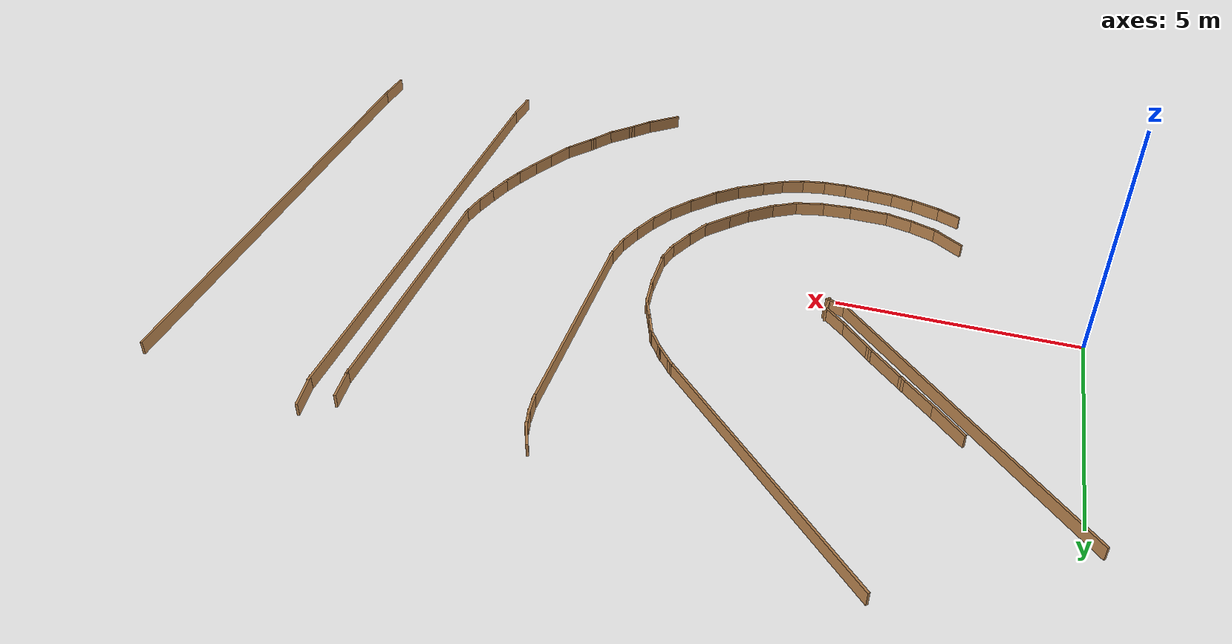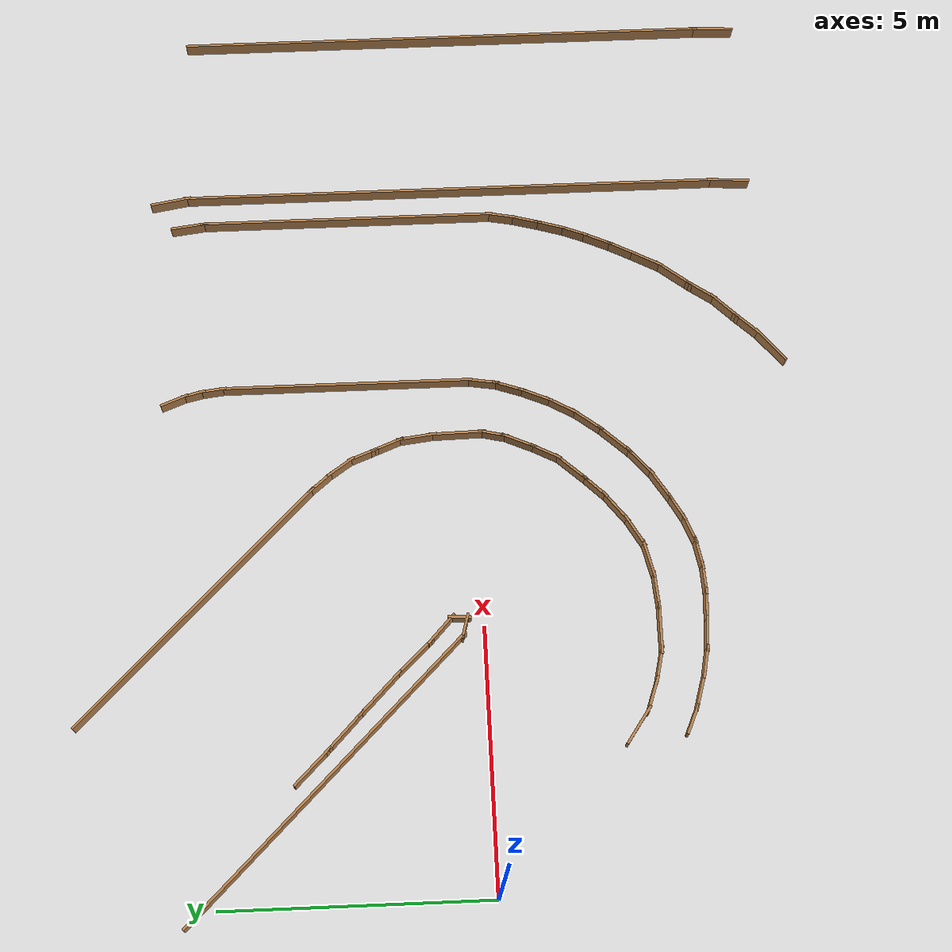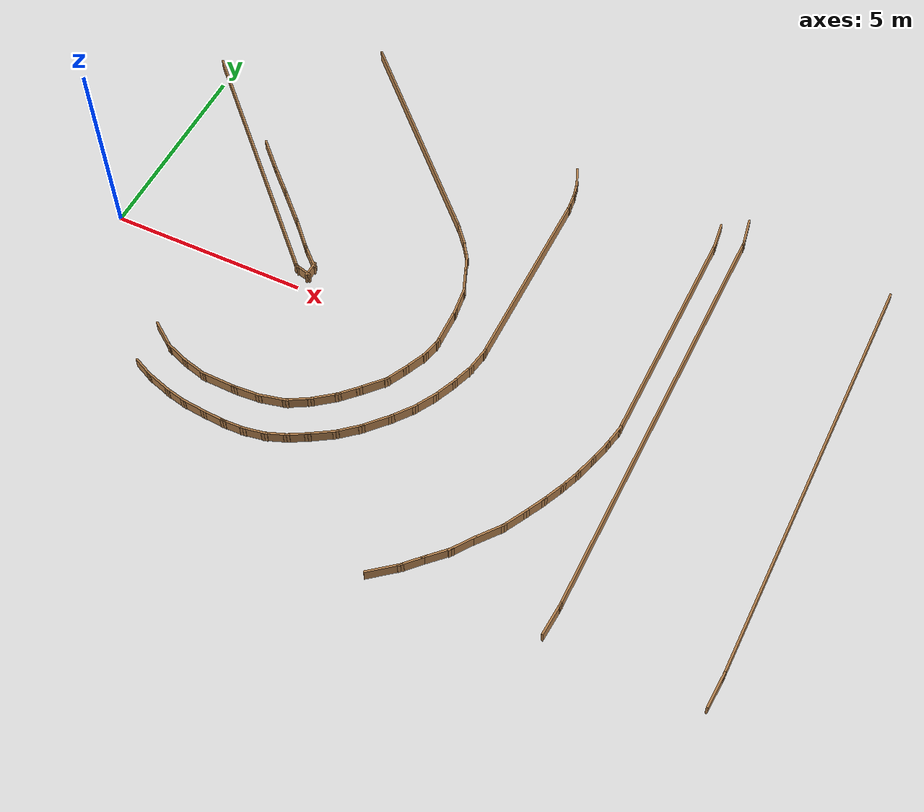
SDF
<sdf version="1.6">
 <model name="rover_racetrack">
  <pose>3.369 -0.8264 0 0 -0 0</pose>
  <link name="Wall_184">
   <collision name="Wall_184_Collision">
    <geometry><box><size>0.605225 0.05 0.3</size></box></geometry>
    <pose>0 0 0.15 0 -0 0</pose>
   </collision>
   <visual name="Wall_184_Visual">
    <pose>0 0 0.15 0 -0 0</pose>
    <geometry><box><size>0.605225 0.05 0.3</size></box></geometry>
    <material>
     <script><uri>file://media/materials/scripts/gazebo.material</uri><name>Gazebo/Wood</name></script>
     <ambient>0.435294 0.796078 0.67451 1</ambient>
    </material>
   </visual>
   <pose>-0.33455 -2.89739 0 0 0 -0.428151</pose>
  </link>
  <link name="Wall_185">
   <collision name="Wall_185_Collision">
    <geometry><box><size>0.789644 0.05 0.3</size></box></geometry>
    <pose>0 0 0.15 0 -0 0</pose>
   </collision>
   <visual name="Wall_185_Visual">
    <pose>0 0 0.15 0 -0 0</pose>
    <geometry><box><size>0.789644 0.05 0.3</size></box></geometry>
    <material>
     <script><uri>file://media/materials/scripts/gazebo.material</uri><name>Gazebo/Wood</name></script>
     <ambient>0.435294 0.796078 0.67451 1</ambient>
    </material>
   </visual>
   <pose>0.177626 -3.08778 0 0 0 -0.304511</pose>
  </link>
  <link name="Wall_186">
   <collision name="Wall_186_Collision">
    <geometry><box><size>0.649256 0.05 0.3</size></box></geometry>
    <pose>0 0 0.15 0 -0 0</pose>
   </collision>
   <visual name="Wall_186_Visual">
    <pose>0 0 0.15 0 -0 0</pose>
    <geometry><box><size>0.649256 0.05 0.3</size></box></geometry>
    <material>
     <script><uri>file://media/materials/scripts/gazebo.material</uri><name>Gazebo/Wood</name></script>
     <ambient>0.435294 0.796078 0.67451 1</ambient>
    </material>
   </visual>
   <pose>0.726821 -3.23597 0 0 0 -0.211093</pose>
  </link>
  <link name="Wall_187">
   <collision name="Wall_187_Collision">
    <geometry><box><size>0.710359 0.05 0.3</size></box></geometry>
    <pose>0 0 0.15 0 -0 0</pose>
   </collision>
   <visual name="Wall_187_Visual">
    <pose>0 0 0.15 0 -0 0</pose>
    <geometry><box><size>0.710359 0.05 0.3</size></box></geometry>
    <material>
     <script><uri>file://media/materials/scripts/gazebo.material</uri><name>Gazebo/Wood</name></script>
     <ambient>0.435294 0.796078 0.67451 1</ambient>
    </material>
   </visual>
   <pose>1.24986 -3.31443 0 0 0 -0.093477</pose>
  </link>
  <link name="Wall_188">
   <collision name="Wall_188_Collision">
    <geometry><box><size>0.691601 0.05 0.3</size></box></geometry>
    <pose>0 0 0.15 0 -0 0</pose>
   </collision>
   <visual name="Wall_188_Visual">
    <pose>0 0 0.15 0 -0 0</pose>
    <geometry><box><size>0.691601 0.05 0.3</size></box></geometry>
    <material>
     <script><uri>file://media/materials/scripts/gazebo.material</uri><name>Gazebo/Wood</name></script>
     <ambient>0.435294 0.796078 0.67451 1</ambient>
    </material>
   </visual>
   <pose>1.79906 -3.35802 0 0 0 -0.064427</pose>
  </link>
  <link name="Wall_189">
   <collision name="Wall_189_Collision">
    <geometry><box><size>0.655909 0.05 0.3</size></box></geometry>
    <pose>0 0 0.15 0 -0 0</pose>
   </collision>
   <visual name="Wall_189_Visual">
    <pose>0 0 0.15 0 -0 0</pose>
    <geometry><box><size>0.655909 0.05 0.3</size></box></geometry>
    <material>
     <script><uri>file://media/materials/scripts/gazebo.material</uri><name>Gazebo/Wood</name></script>
     <ambient>0.435294 0.796078 0.67451 1</ambient>
    </material>
   </visual>
   <pose>2.3221 -3.36674 0 0 -0 0.034469</pose>
  </link>
  <link name="Wall_190">
   <collision name="Wall_190_Collision">
    <geometry><box><size>0.663068 0.05 0.3</size></box></geometry>
    <pose>0 0 0.15 0 -0 0</pose>
   </collision>
   <visual name="Wall_190_Visual">
    <pose>0 0 0.15 0 -0 0</pose>
    <geometry><box><size>0.663068 0.05 0.3</size></box></geometry>
    <material>
     <script><uri>file://media/materials/scripts/gazebo.material</uri><name>Gazebo/Wood</name></script>
     <ambient>0.435294 0.796078 0.67451 1</ambient>
    </material>
   </visual>
   <pose>2.82771 -3.31443 0 0 -0 0.170735</pose>
  </link>
  <link name="Wall_191">
   <collision name="Wall_191_Collision">
    <geometry><box><size>0.651988 0.05 0.3</size></box></geometry>
    <pose>0 0 0.15 0 -0 0</pose>
   </collision>
   <visual name="Wall_191_Visual">
    <pose>0 0 0.15 0 -0 0</pose>
    <geometry><box><size>0.651988 0.05 0.3</size></box></geometry>
    <material>
     <script><uri>file://media/materials/scripts/gazebo.material</uri><name>Gazebo/Wood</name></script>
     <ambient>0.435294 0.796078 0.67451 1</ambient>
    </material>
   </visual>
   <pose>3.31588 -3.18367 0 0 -0 0.354706</pose>
  </link>
  <link name="Wall_192">
   <collision name="Wall_192_Collision">
    <geometry><box><size>0.625876 0.05 0.3</size></box></geometry>
    <pose>0 0 0.15 0 -0 0</pose>
   </collision>
   <visual name="Wall_192_Visual">
    <pose>0 0 0.15 0 -0 0</pose>
    <geometry><box><size>0.625876 0.05 0.3</size></box></geometry>
    <material>
     <script><uri>file://media/materials/scripts/gazebo.material</uri><name>Gazebo/Wood</name></script>
     <ambient>0.435294 0.796078 0.67451 1</ambient>
    </material>
   </visual>
   <pose>3.76047 -2.98317 0 0 -0 0.496423</pose>
  </link>
  <link name="Wall_193">
   <collision name="Wall_193_Collision">
    <geometry><box><size>0.783916 0.05 0.3</size></box></geometry>
    <pose>0 0 0.15 0 -0 0</pose>
   </collision>
   <visual name="Wall_193_Visual">
    <pose>0 0 0.15 0 -0 0</pose>
    <geometry><box><size>0.783916 0.05 0.3</size></box></geometry>
    <material>
     <script><uri>file://media/materials/scripts/gazebo.material</uri><name>Gazebo/Wood</name></script>
     <ambient>0.435294 0.796078 0.67451 1</ambient>
    </material>
   </visual>
   <pose>4.23993 -2.70422 0 0 -0 0.549853</pose>
  </link>
  <link name="Wall_194">
   <collision name="Wall_194_Collision">
    <geometry><box><size>0.743807 0.05 0.3</size></box></geometry>
    <pose>0 0 0.15 0 -0 0</pose>
   </collision>
   <visual name="Wall_194_Visual">
    <pose>0 0 0.15 0 -0 0</pose>
    <geometry><box><size>0.743807 0.05 0.3</size></box></geometry>
    <material>
     <script><uri>file://media/materials/scripts/gazebo.material</uri><name>Gazebo/Wood</name></script>
     <ambient>0.435294 0.796078 0.67451 1</ambient>
    </material>
   </visual>
   <pose>4.73681 -2.3468 0 0 -0 0.702257</pose>
  </link>
  <link name="Wall_195">
   <collision name="Wall_195_Collision">
    <geometry><box><size>0.865463 0.05 0.3</size></box></geometry>
    <pose>0 0 0.15 0 -0 0</pose>
   </collision>
   <visual name="Wall_195_Visual">
    <pose>0 0 0.15 0 -0 0</pose>
    <geometry><box><size>0.865463 0.05 0.3</size></box></geometry>
    <material>
     <script><uri>file://media/materials/scripts/gazebo.material</uri><name>Gazebo/Wood</name></script>
     <ambient>0.435294 0.796078 0.67451 1</ambient>
    </material>
   </visual>
   <pose>5.20756 -1.8935 0 0 -0 0.819867</pose>
  </link>
  <link name="Wall_196">
   <collision name="Wall_196_Collision">
    <geometry><box><size>0.746361 0.05 0.3</size></box></geometry>
    <pose>0 0 0.15 0 -0 0</pose>
   </collision>
   <visual name="Wall_196_Visual">
    <pose>0 0 0.15 0 -0 0</pose>
    <geometry><box><size>0.746361 0.05 0.3</size></box></geometry>
    <material>
     <script><uri>file://media/materials/scripts/gazebo.material</uri><name>Gazebo/Wood</name></script>
     <ambient>0.435294 0.796078 0.67451 1</ambient>
    </material>
   </visual>
   <pose>5.63471 -1.39661 0 0 -0 0.909753</pose>
  </link>
  <link name="Wall_197">
   <collision name="Wall_197_Collision">
    <geometry><box><size>0.712254 0.05 0.3</size></box></geometry>
    <pose>0 0 0.15 0 -0 0</pose>
   </collision>
   <visual name="Wall_197_Visual">
    <pose>0 0 0.15 0 -0 0</pose>
    <geometry><box><size>0.712254 0.05 0.3</size></box></geometry>
    <material>
     <script><uri>file://media/materials/scripts/gazebo.material</uri><name>Gazebo/Wood</name></script>
     <ambient>0.435294 0.796078 0.67451 1</ambient>
    </material>
   </visual>
   <pose>5.95725 -0.917152 0 0 -0 1.05165</pose>
  </link>
  <link name="Wall_198">
   <collision name="Wall_198_Collision">
    <geometry><box><size>0.720039 0.05 0.3</size></box></geometry>
    <pose>0 0 0.15 0 -0 0</pose>
   </collision>
   <visual name="Wall_198_Visual">
    <pose>0 0 0.15 0 -0 0</pose>
    <geometry><box><size>0.720039 0.05 0.3</size></box></geometry>
    <material>
     <script><uri>file://media/materials/scripts/gazebo.material</uri><name>Gazebo/Wood</name></script>
     <ambient>0.435294 0.796078 0.67451 1</ambient>
    </material>
   </visual>
   <pose>6.21005 -0.411544 0 0 -0 1.16189</pose>
  </link>
  <link name="Wall_199">
   <collision name="Wall_199_Collision">
    <geometry><box><size>0.684824 0.05 0.3</size></box></geometry>
    <pose>0 0 0.15 0 -0 0</pose>
   </collision>
   <visual name="Wall_199_Visual">
    <pose>0 0 0.15 0 -0 0</pose>
    <geometry><box><size>0.684824 0.05 0.3</size></box></geometry>
    <material>
     <script><uri>file://media/materials/scripts/gazebo.material</uri><name>Gazebo/Wood</name></script>
     <ambient>0.435294 0.796078 0.67451 1</ambient>
    </material>
   </visual>
   <pose>6.41055 0.102782 0 0 -0 1.23874</pose>
  </link>
  <link name="Wall_200">
   <collision name="Wall_200_Collision">
    <geometry><box><size>0.697463 0.05 0.3</size></box></geometry>
    <pose>0 0 0.15 0 -0 0</pose>
   </collision>
   <visual name="Wall_200_Visual">
    <pose>0 0 0.15 0 -0 0</pose>
    <geometry><box><size>0.697463 0.05 0.3</size></box></geometry>
    <material>
     <script><uri>file://media/materials/scripts/gazebo.material</uri><name>Gazebo/Wood</name></script>
     <ambient>0.435294 0.796078 0.67451 1</ambient>
    </material>
   </visual>
   <pose>6.54131 0.625825 0 0 -0 1.41088</pose>
  </link>
  <link name="Wall_202">
   <collision name="Wall_202_Collision">
    <geometry><box><size>5 0.05 0.3</size></box></geometry>
    <pose>0 0 0.15 0 -0 0</pose>
   </collision>
   <visual name="Wall_202_Visual">
    <pose>0 0 0.15 0 -0 0</pose>
    <geometry><box><size>5 0.05 0.3</size></box></geometry>
    <material>
     <script><uri>file://media/materials/scripts/gazebo.material</uri><name>Gazebo/Wood</name></script>
     <ambient>0.435294 0.796078 0.67451 1</ambient>
    </material>
   </visual>
   <pose>6.5849 3.32106 0 0 -0 1.5708</pose>
  </link>
  <link name="Wall_203">
   <collision name="Wall_203_Collision">
    <geometry><box><size>0.565031 0.05 0.3</size></box></geometry>
    <pose>0 0 0.15 0 -0 0</pose>
   </collision>
   <visual name="Wall_203_Visual">
    <pose>0 0 0.15 0 -0 0</pose>
    <geometry><box><size>0.565031 0.05 0.3</size></box></geometry>
    <material>
     <script><uri>file://media/materials/scripts/gazebo.material</uri><name>Gazebo/Wood</name></script>
     <ambient>0.435294 0.796078 0.67451 1</ambient>
    </material>
   </visual>
   <pose>6.56018 5.9521 0 0 -0 1.69023</pose>
  </link>
  <link name="Wall_204">
   <collision name="Wall_204_Collision">
    <geometry><box><size>0.500158 0.05 0.3</size></box></geometry>
    <pose>0 0 0.15 0 -0 0</pose>
   </collision>
   <visual name="Wall_204_Visual">
    <pose>0 0 0.15 0 -0 0</pose>
    <geometry><box><size>0.500158 0.05 0.3</size></box></geometry>
    <material>
     <script><uri>file://media/materials/scripts/gazebo.material</uri><name>Gazebo/Wood</name></script>
     <ambient>0.435294 0.796078 0.67451 1</ambient>
    </material>
   </visual>
   <pose>6.49535 6.32856 0 0 -0 1.80189</pose>
  </link>
  <link name="Wall_205">
   <collision name="Wall_205_Collision">
    <geometry><box><size>0.58189 0.05 0.3</size></box></geometry>
    <pose>0 0 0.15 0 -0 0</pose>
   </collision>
   <visual name="Wall_205_Visual">
    <pose>0 0 0.15 0 -0 0</pose>
    <geometry><box><size>0.58189 0.05 0.3</size></box></geometry>
    <material>
     <script><uri>file://media/materials/scripts/gazebo.material</uri><name>Gazebo/Wood</name></script>
     <ambient>0.435294 0.796078 0.67451 1</ambient>
    </material>
   </visual>
   <pose>6.37505 6.69949 0 0 -0 1.9513</pose>
  </link>
  <link name="Wall_219">
   <collision name="Wall_219_Collision">
    <geometry><box><size>6.34557 0.05 0.3</size></box></geometry>
    <pose>0 0 0.15 0 -0 0</pose>
   </collision>
   <visual name="Wall_219_Visual">
    <pose>0 0 0.15 0 -0 0</pose>
    <geometry><box><size>6.34557 0.05 0.3</size></box></geometry>
    <material>
     <script><uri>file://media/materials/scripts/gazebo.material</uri><name>Gazebo/Wood</name></script>
     <ambient>0.435294 0.796078 0.67451 1</ambient>
    </material>
   </visual>
   <pose>2.19463 6.21829 0 0 0 -0.78311</pose>
  </link>
  <link name="Wall_220">
   <collision name="Wall_220_Collision">
    <geometry><box><size>0.648031 0.05 0.3</size></box></geometry>
    <pose>0 0 0.15 0 -0 0</pose>
   </collision>
   <visual name="Wall_220_Visual">
    <pose>0 0 0.15 0 -0 0</pose>
    <geometry><box><size>0.648031 0.05 0.3</size></box></geometry>
    <material>
     <script><uri>file://media/materials/scripts/gazebo.material</uri><name>Gazebo/Wood</name></script>
     <ambient>0.435294 0.796078 0.67451 1</ambient>
    </material>
   </visual>
   <pose>4.5505 3.84237 0 0 0 -0.870903</pose>
  </link>
  <link name="Wall_221">
   <collision name="Wall_221_Collision">
    <geometry><box><size>0.639482 0.05 0.3</size></box></geometry>
    <pose>0 0 0.15 0 -0 0</pose>
   </collision>
   <visual name="Wall_221_Visual">
    <pose>0 0 0.15 0 -0 0</pose>
    <geometry><box><size>0.639482 0.05 0.3</size></box></geometry>
    <material>
     <script><uri>file://media/materials/scripts/gazebo.material</uri><name>Gazebo/Wood</name></script>
     <ambient>0.435294 0.796078 0.67451 1</ambient>
    </material>
   </visual>
   <pose>4.85125 3.45139 0 0 0 -0.96007</pose>
  </link>
  <link name="Wall_222">
   <collision name="Wall_222_Collision">
    <geometry><box><size>0.645198 0.05 0.3</size></box></geometry>
    <pose>0 0 0.15 0 -0 0</pose>
   </collision>
   <visual name="Wall_222_Visual">
    <pose>0 0 0.15 0 -0 0</pose>
    <geometry><box><size>0.645198 0.05 0.3</size></box></geometry>
    <material>
     <script><uri>file://media/materials/scripts/gazebo.material</uri><name>Gazebo/Wood</name></script>
     <ambient>0.435294 0.796078 0.67451 1</ambient>
    </material>
   </visual>
   <pose>5.08183 3.02032 0 0 0 -1.19781</pose>
  </link>
  <link name="Wall_223">
   <collision name="Wall_223_Collision">
    <geometry><box><size>0.689862 0.05 0.3</size></box></geometry>
    <pose>0 0 0.15 0 -0 0</pose>
   </collision>
   <visual name="Wall_223_Visual">
    <pose>0 0 0.15 0 -0 0</pose>
    <geometry><box><size>0.689862 0.05 0.3</size></box></geometry>
    <material>
     <script><uri>file://media/materials/scripts/gazebo.material</uri><name>Gazebo/Wood</name></script>
     <ambient>0.435294 0.796078 0.67451 1</ambient>
    </material>
   </visual>
   <pose>5.2723 2.53912 0 0 0 -1.19029</pose>
  </link>
  <link name="Wall_224">
   <collision name="Wall_224_Collision">
    <geometry><box><size>0.796592 0.05 0.3</size></box></geometry>
    <pose>0 0 0.15 0 -0 0</pose>
   </collision>
   <visual name="Wall_224_Visual">
    <pose>0 0 0.15 0 -0 0</pose>
    <geometry><box><size>0.796592 0.05 0.3</size></box></geometry>
    <material>
     <script><uri>file://media/materials/scripts/gazebo.material</uri><name>Gazebo/Wood</name></script>
     <ambient>0.435294 0.796078 0.67451 1</ambient>
    </material>
   </visual>
   <pose>5.41265 1.96769 0 0 0 -1.44644</pose>
  </link>
  <link name="Wall_228">
   <collision name="Wall_228_Collision">
    <geometry><box><size>1.11261 0.05 0.3</size></box></geometry>
    <pose>0 0 0.15 0 -0 0</pose>
   </collision>
   <visual name="Wall_228_Visual">
    <pose>0 0 0.15 0 -0 0</pose>
    <geometry><box><size>1.11261 0.05 0.3</size></box></geometry>
    <material>
     <script><uri>file://media/materials/scripts/gazebo.material</uri><name>Gazebo/Wood</name></script>
     <ambient>0.435294 0.796078 0.67451 1</ambient>
    </material>
   </visual>
   <pose>5.46278 1.16569 0 0 0 -1.54997</pose>
  </link>
  <link name="Wall_229">
   <collision name="Wall_229_Collision">
    <geometry><box><size>0.602348 0.05 0.3</size></box></geometry>
    <pose>0 0 0.15 0 -0 0</pose>
   </collision>
   <visual name="Wall_229_Visual">
    <pose>0 0 0.15 0 -0 0</pose>
    <geometry><box><size>0.602348 0.05 0.3</size></box></geometry>
    <material>
     <script><uri>file://media/materials/scripts/gazebo.material</uri><name>Gazebo/Wood</name></script>
     <ambient>0.435294 0.796078 0.67451 1</ambient>
    </material>
   </visual>
   <pose>5.42268 0.463944 0 0 0 -1.79427</pose>
  </link>
  <link name="Wall_230">
   <collision name="Wall_230_Collision">
    <geometry><box><size>0.742408 0.05 0.3</size></box></geometry>
    <pose>0 0 0.15 0 -0 0</pose>
   </collision>
   <visual name="Wall_230_Visual">
    <pose>0 0 0.15 0 -0 0</pose>
    <geometry><box><size>0.742408 0.05 0.3</size></box></geometry>
    <material>
     <script><uri>file://media/materials/scripts/gazebo.material</uri><name>Gazebo/Wood</name></script>
     <ambient>0.435294 0.796078 0.67451 1</ambient>
    </material>
   </visual>
   <pose>5.25225 -0.02728 0 0 0 -1.98902</pose>
  </link>
  <link name="Wall_231">
   <collision name="Wall_231_Collision">
    <geometry><box><size>0.670141 0.05 0.3</size></box></geometry>
    <pose>0 0 0.15 0 -0 0</pose>
   </collision>
   <visual name="Wall_231_Visual">
    <pose>0 0 0.15 0 -0 0</pose>
    <geometry><box><size>0.670141 0.05 0.3</size></box></geometry>
    <material>
     <script><uri>file://media/materials/scripts/gazebo.material</uri><name>Gazebo/Wood</name></script>
     <ambient>0.435294 0.796078 0.67451 1</ambient>
    </material>
   </visual>
   <pose>5.01165 -0.528529 0 0 0 -2.05168</pose>
  </link>
  <link name="Wall_232">
   <collision name="Wall_232_Collision">
    <geometry><box><size>0.831109 0.05 0.3</size></box></geometry>
    <pose>0 0 0.15 0 -0 0</pose>
   </collision>
   <visual name="Wall_232_Visual">
    <pose>0 0 0.15 0 -0 0</pose>
    <geometry><box><size>0.831109 0.05 0.3</size></box></geometry>
    <material>
     <script><uri>file://media/materials/scripts/gazebo.material</uri><name>Gazebo/Wood</name></script>
     <ambient>0.435294 0.796078 0.67451 1</ambient>
    </material>
   </visual>
   <pose>4.66078 -1.00973 0 0 0 -2.31455</pose>
  </link>
  <link name="Wall_233">
   <collision name="Wall_233_Collision">
    <geometry><box><size>0.660389 0.05 0.3</size></box></geometry>
    <pose>0 0 0.15 0 -0 0</pose>
   </collision>
   <visual name="Wall_233_Visual">
    <pose>0 0 0.15 0 -0 0</pose>
    <geometry><box><size>0.660389 0.05 0.3</size></box></geometry>
    <material>
     <script><uri>file://media/materials/scripts/gazebo.material</uri><name>Gazebo/Wood</name></script>
     <ambient>0.435294 0.796078 0.67451 1</ambient>
    </material>
   </visual>
   <pose>4.24975 -1.4408 0 0 0 -2.35619</pose>
  </link>
  <link name="Wall_234">
   <collision name="Wall_234_Collision">
    <geometry><box><size>0.779582 0.05 0.3</size></box></geometry>
    <pose>0 0 0.15 0 -0 0</pose>
   </collision>
   <visual name="Wall_234_Visual">
    <pose>0 0 0.15 0 -0 0</pose>
    <geometry><box><size>0.779582 0.05 0.3</size></box></geometry>
    <material>
     <script><uri>file://media/materials/scripts/gazebo.material</uri><name>Gazebo/Wood</name></script>
     <ambient>0.435294 0.796078 0.67451 1</ambient>
    </material>
   </visual>
   <pose>3.81868 -1.81173 0 0 0 -2.49172</pose>
  </link>
  <link name="Wall_235">
   <collision name="Wall_235_Collision">
    <geometry><box><size>0.724494 0.05 0.3</size></box></geometry>
    <pose>0 0 0.15 0 -0 0</pose>
   </collision>
   <visual name="Wall_235_Visual">
    <pose>0 0 0.15 0 -0 0</pose>
    <geometry><box><size>0.724494 0.05 0.3</size></box></geometry>
    <material>
     <script><uri>file://media/materials/scripts/gazebo.material</uri><name>Gazebo/Wood</name></script>
     <ambient>0.435294 0.796078 0.67451 1</ambient>
    </material>
   </visual>
   <pose>3.31743 -2.14255 0 0 0 -2.6311</pose>
  </link>
  <link name="Wall_236">
   <collision name="Wall_236_Collision">
    <geometry><box><size>0.787198 0.05 0.3</size></box></geometry>
    <pose>0 0 0.15 0 -0 0</pose>
   </collision>
   <visual name="Wall_236_Visual">
    <pose>0 0 0.15 0 -0 0</pose>
    <geometry><box><size>0.787198 0.05 0.3</size></box></geometry>
    <material>
     <script><uri>file://media/materials/scripts/gazebo.material</uri><name>Gazebo/Wood</name></script>
     <ambient>0.435294 0.796078 0.67451 1</ambient>
    </material>
   </visual>
   <pose>2.75603 -2.35308 0 0 0 -2.91951</pose>
  </link>
  <link name="Wall_237">
   <collision name="Wall_237_Collision">
    <geometry><box><size>0.772841 0.05 0.3</size></box></geometry>
    <pose>0 0 0.15 0 -0 0</pose>
   </collision>
   <visual name="Wall_237_Visual">
    <pose>0 0 0.15 0 -0 0</pose>
    <geometry><box><size>0.772841 0.05 0.3</size></box></geometry>
    <material>
     <script><uri>file://media/materials/scripts/gazebo.material</uri><name>Gazebo/Wood</name></script>
     <ambient>0.435294 0.796078 0.67451 1</ambient>
    </material>
   </visual>
   <pose>2.13448 -2.4433 0 0 0 -3.07717</pose>
  </link>
  <link name="Wall_238">
   <collision name="Wall_238_Collision">
    <geometry><box><size>0.992099 0.05 0.3</size></box></geometry>
    <pose>0 0 0.15 0 -0 0</pose>
   </collision>
   <visual name="Wall_238_Visual">
    <pose>0 0 0.15 0 -0 0</pose>
    <geometry><box><size>0.992099 0.05 0.3</size></box></geometry>
    <material>
     <script><uri>file://media/materials/scripts/gazebo.material</uri><name>Gazebo/Wood</name></script>
     <ambient>0.435294 0.796078 0.67451 1</ambient>
    </material>
   </visual>
   <pose>1.40266 -2.45333 0 0 -0 3.11779</pose>
  </link>
  <link name="Wall_239">
   <collision name="Wall_239_Collision">
    <geometry><box><size>0.728677 0.05 0.3</size></box></geometry>
    <pose>0 0 0.15 0 -0 0</pose>
   </collision>
   <visual name="Wall_239_Visual">
    <pose>0 0 0.15 0 -0 0</pose>
    <geometry><box><size>0.728677 0.05 0.3</size></box></geometry>
    <material>
     <script><uri>file://media/materials/scripts/gazebo.material</uri><name>Gazebo/Wood</name></script>
     <ambient>0.435294 0.796078 0.67451 1</ambient>
    </material>
   </visual>
   <pose>0.700907 -2.37313 0 0 -0 2.89661</pose>
  </link>
  <link name="Wall_240">
   <collision name="Wall_240_Collision">
    <geometry><box><size>0.727286 0.05 0.3</size></box></geometry>
    <pose>0 0 0.15 0 -0 0</pose>
   </collision>
   <visual name="Wall_240_Visual">
    <pose>0 0 0.15 0 -0 0</pose>
    <geometry><box><size>0.727286 0.05 0.3</size></box></geometry>
    <material>
     <script><uri>file://media/materials/scripts/gazebo.material</uri><name>Gazebo/Wood</name></script>
     <ambient>0.435294 0.796078 0.67451 1</ambient>
    </material>
   </visual>
   <pose>0.149532 -2.2027 0 0 -0 2.78689</pose>
  </link>
  <link name="Wall_241">
   <collision name="Wall_241_Collision">
    <geometry><box><size>0.839906 0.05 0.3</size></box></geometry>
    <pose>0 0 0.15 0 -0 0</pose>
   </collision>
   <visual name="Wall_241_Visual">
    <pose>0 0 0.15 0 -0 0</pose>
    <geometry><box><size>0.839906 0.05 0.3</size></box></geometry>
    <material>
     <script><uri>file://media/materials/scripts/gazebo.material</uri><name>Gazebo/Wood</name></script>
     <ambient>0.435294 0.796078 0.67451 1</ambient>
    </material>
   </visual>
   <pose>-0.401842 -1.90195 0 0 -0 2.52134</pose>
  </link>
  <link name="Wall_276">
   <collision name="Wall_276_Collision">
    <geometry><box><size>0.832386 0.05 0.3</size></box></geometry>
    <pose>0 0 0.15 0 -0 0</pose>
   </collision>
   <visual name="Wall_276_Visual">
    <pose>0 0 0.15 0 -0 0</pose>
    <geometry><box><size>0.832386 0.05 0.3</size></box></geometry>
    <material>
     <script><uri>file://media/materials/scripts/gazebo.material</uri><name>Gazebo/Wood</name></script>
     <ambient>0.435294 0.796078 0.67451 1</ambient>
    </material>
   </visual>
   <pose>10.833 6.8449 0 0 0 -1.40006</pose>
  </link>
  <link name="Wall_278">
   <collision name="Wall_278_Collision">
    <geometry><box><size>11 0.05 0.3</size></box></geometry>
    <pose>0 0 0.15 0 -0 0</pose>
   </collision>
   <visual name="Wall_278_Visual">
    <pose>0 0 0.15 0 -0 0</pose>
    <geometry><box><size>11 0.05 0.3</size></box></geometry>
    <material>
     <script><uri>file://media/materials/scripts/gazebo.material</uri><name>Gazebo/Wood</name></script>
     <ambient>0.435294 0.796078 0.67451 1</ambient>
    </material>
   </visual>
   <pose>10.8909 1.08367 0 0 0 -1.5708</pose>
  </link>
  <link name="Wall_280">
   <collision name="Wall_280_Collision">
    <geometry><box><size>0.872504 0.05 0.3</size></box></geometry>
    <pose>0 0 0.15 0 -0 0</pose>
   </collision>
   <visual name="Wall_280_Visual">
    <pose>0 0 0.15 0 -0 0</pose>
    <geometry><box><size>0.872504 0.05 0.3</size></box></geometry>
    <material>
     <script><uri>file://media/materials/scripts/gazebo.material</uri><name>Gazebo/Wood</name></script>
     <ambient>0.435294 0.796078 0.67451 1</ambient>
    </material>
   </visual>
   <pose>10.8678 -4.70183 0 0 0 -1.63503</pose>
  </link>
  <link name="Wall_367">
   <collision name="Wall_367_Collision">
    <geometry><box><size>0.878038 0.05 0.3</size></box></geometry>
    <pose>0 0 0.15 0 -0 0</pose>
   </collision>
   <visual name="Wall_367_Visual">
    <pose>0 0 0.15 0 -0 0</pose>
    <geometry><box><size>0.878038 0.05 0.3</size></box></geometry>
    <material>
     <script><uri>file://media/materials/scripts/gazebo.material</uri><name>Gazebo/Wood</name></script>
     <ambient>0.435294 0.796078 0.67451 1</ambient>
    </material>
   </visual>
   <pose>7.10414 -5.16577 0 0 -0 0.668289</pose>
  </link>
  <link name="Wall_368">
   <collision name="Wall_368_Collision">
    <geometry><box><size>0.695879 0.05 0.3</size></box></geometry>
    <pose>0 0 0.15 0 -0 0</pose>
   </collision>
   <visual name="Wall_368_Visual">
    <pose>0 0 0.15 0 -0 0</pose>
    <geometry><box><size>0.695879 0.05 0.3</size></box></geometry>
    <material>
     <script><uri>file://media/materials/scripts/gazebo.material</uri><name>Gazebo/Wood</name></script>
     <ambient>0.435294 0.796078 0.67451 1</ambient>
    </material>
   </visual>
   <pose>7.58033 -4.74472 0 0 -0 0.798384</pose>
  </link>
  <link name="Wall_369">
   <collision name="Wall_369_Collision">
    <geometry><box><size>0.752584 0.05 0.3</size></box></geometry>
    <pose>0 0 0.15 0 -0 0</pose>
   </collision>
   <visual name="Wall_369_Visual">
    <pose>0 0 0.15 0 -0 0</pose>
    <geometry><box><size>0.752584 0.05 0.3</size></box></geometry>
    <material>
     <script><uri>file://media/materials/scripts/gazebo.material</uri><name>Gazebo/Wood</name></script>
     <ambient>0.435294 0.796078 0.67451 1</ambient>
    </material>
   </visual>
   <pose>7.98634 -4.33871 0 0 -0 0.773634</pose>
  </link>
  <link name="Wall_370">
   <collision name="Wall_370_Collision">
    <geometry><box><size>0.703557 0.05 0.3</size></box></geometry>
    <pose>0 0 0.15 0 -0 0</pose>
   </collision>
   <visual name="Wall_370_Visual">
    <pose>0 0 0.15 0 -0 0</pose>
    <geometry><box><size>0.703557 0.05 0.3</size></box></geometry>
    <material>
     <script><uri>file://media/materials/scripts/gazebo.material</uri><name>Gazebo/Wood</name></script>
     <ambient>0.435294 0.796078 0.67451 1</ambient>
    </material>
   </visual>
   <pose>8.36227 -3.90263 0 0 -0 0.952652</pose>
  </link>
  <link name="Wall_372">
   <collision name="Wall_372_Collision">
    <geometry><box><size>0.886328 0.05 0.3</size></box></geometry>
    <pose>0 0 0.15 0 -0 0</pose>
   </collision>
   <visual name="Wall_372_Visual">
    <pose>0 0 0.15 0 -0 0</pose>
    <geometry><box><size>0.886328 0.05 0.3</size></box></geometry>
    <material>
     <script><uri>file://media/materials/scripts/gazebo.material</uri><name>Gazebo/Wood</name></script>
     <ambient>0.435294 0.796078 0.67451 1</ambient>
    </material>
   </visual>
   <pose>8.75212 -3.38914 0 0 -0 0.897949</pose>
  </link>
  <link name="Wall_373">
   <collision name="Wall_373_Collision">
    <geometry><box><size>0.757196 0.05 0.3</size></box></geometry>
    <pose>0 0 0.15 0 -0 0</pose>
   </collision>
   <visual name="Wall_373_Visual">
    <pose>0 0 0.15 0 -0 0</pose>
    <geometry><box><size>0.757196 0.05 0.3</size></box></geometry>
    <material>
     <script><uri>file://media/materials/scripts/gazebo.material</uri><name>Gazebo/Wood</name></script>
     <ambient>0.435294 0.796078 0.67451 1</ambient>
    </material>
   </visual>
   <pose>9.12641 -2.8344 0 0 -0 1.07345</pose>
  </link>
  <link name="Wall_374">
   <collision name="Wall_374_Collision">
    <geometry><box><size>0.647801 0.05 0.3</size></box></geometry>
    <pose>0 0 0.15 0 -0 0</pose>
   </collision>
   <visual name="Wall_374_Visual">
    <pose>0 0 0.15 0 -0 0</pose>
    <geometry><box><size>0.647801 0.05 0.3</size></box></geometry>
    <material>
     <script><uri>file://media/materials/scripts/gazebo.material</uri><name>Gazebo/Wood</name></script>
     <ambient>0.435294 0.796078 0.67451 1</ambient>
    </material>
   </visual>
   <pose>9.3856 -2.3465 0 0 -0 1.09345</pose>
  </link>
  <link name="Wall_375">
   <collision name="Wall_375_Collision">
    <geometry><box><size>0.702682 0.05 0.3</size></box></geometry>
    <pose>0 0 0.15 0 -0 0</pose>
   </collision>
   <visual name="Wall_375_Visual">
    <pose>0 0 0.15 0 -0 0</pose>
    <geometry><box><size>0.702682 0.05 0.3</size></box></geometry>
    <material>
     <script><uri>file://media/materials/scripts/gazebo.material</uri><name>Gazebo/Wood</name></script>
     <ambient>0.435294 0.796078 0.67451 1</ambient>
    </material>
   </visual>
   <pose>9.6143 -1.87385 0 0 -0 1.14417</pose>
  </link>
  <link name="Wall_376">
   <collision name="Wall_376_Collision">
    <geometry><box><size>0.608671 0.05 0.3</size></box></geometry>
    <pose>0 0 0.15 0 -0 0</pose>
   </collision>
   <visual name="Wall_376_Visual">
    <pose>0 0 0.15 0 -0 0</pose>
    <geometry><box><size>0.608671 0.05 0.3</size></box></geometry>
    <material>
     <script><uri>file://media/materials/scripts/gazebo.material</uri><name>Gazebo/Wood</name></script>
     <ambient>0.435294 0.796078 0.67451 1</ambient>
    </material>
   </visual>
   <pose>9.81251 -1.40883 0 0 -0 1.19646</pose>
  </link>
  <link name="Wall_377">
   <collision name="Wall_377_Collision">
    <geometry><box><size>0.675737 0.05 0.3</size></box></geometry>
    <pose>0 0 0.15 0 -0 0</pose>
   </collision>
   <visual name="Wall_377_Visual">
    <pose>0 0 0.15 0 -0 0</pose>
    <geometry><box><size>0.675737 0.05 0.3</size></box></geometry>
    <material>
     <script><uri>file://media/materials/scripts/gazebo.material</uri><name>Gazebo/Wood</name></script>
     <ambient>0.435294 0.796078 0.67451 1</ambient>
    </material>
   </visual>
   <pose>9.9726 -0.943801 0 0 -0 1.27656</pose>
  </link>
  <link name="Wall_378">
   <collision name="Wall_378_Collision">
    <geometry><box><size>0.671519 0.05 0.3</size></box></geometry>
    <pose>0 0 0.15 0 -0 0</pose>
   </collision>
   <visual name="Wall_378_Visual">
    <pose>0 0 0.15 0 -0 0</pose>
    <geometry><box><size>0.671519 0.05 0.3</size></box></geometry>
    <material>
     <script><uri>file://media/materials/scripts/gazebo.material</uri><name>Gazebo/Wood</name></script>
     <ambient>0.435294 0.796078 0.67451 1</ambient>
    </material>
   </visual>
   <pose>10.1174 -0.440658 0 0 -0 1.30454</pose>
  </link>
  <link name="Wall_379">
   <collision name="Wall_379_Collision">
    <geometry><box><size>0.646398 0.05 0.3</size></box></geometry>
    <pose>0 0 0.15 0 -0 0</pose>
   </collision>
   <visual name="Wall_379_Visual">
    <pose>0 0 0.15 0 -0 0</pose>
    <geometry><box><size>0.646398 0.05 0.3</size></box></geometry>
    <material>
     <script><uri>file://media/materials/scripts/gazebo.material</uri><name>Gazebo/Wood</name></script>
     <ambient>0.435294 0.796078 0.67451 1</ambient>
    </material>
   </visual>
   <pose>10.2318 0.054861 0 0 -0 1.38545</pose>
  </link>
  <link name="Wall_383">
   <collision name="Wall_383_Collision">
    <geometry><box><size>6 0.05 0.3</size></box></geometry>
    <pose>0 0 0.15 0 -0 0</pose>
   </collision>
   <visual name="Wall_383_Visual">
    <pose>0 0 0.15 0 -0 0</pose>
    <geometry><box><size>6 0.05 0.3</size></box></geometry>
    <material>
     <script><uri>file://media/materials/scripts/gazebo.material</uri><name>Gazebo/Wood</name></script>
     <ambient>0.435294 0.796078 0.67451 1</ambient>
    </material>
   </visual>
   <pose>10.2775 3.22381 0 0 -0 1.5708</pose>
  </link>
  <link name="Wall_385">
   <collision name="Wall_385_Collision">
    <geometry><box><size>0.762506 0.05 0.3</size></box></geometry>
    <pose>0 0 0.15 0 -0 0</pose>
   </collision>
   <visual name="Wall_385_Visual">
    <pose>0 0 0.15 0 -0 0</pose>
    <geometry><box><size>0.762506 0.05 0.3</size></box></geometry>
    <material>
     <script><uri>file://media/materials/scripts/gazebo.material</uri><name>Gazebo/Wood</name></script>
     <ambient>0.435294 0.796078 0.67451 1</ambient>
    </material>
   </visual>
   <pose>10.2383 6.45253 0 0 -0 1.69944</pose>
  </link>
  <link name="Wall_430">
   <collision name="Wall_430_Collision">
    <geometry><box><size>0.969362 0.05 0.3</size></box></geometry>
    <pose>0 0 0.15 0 -0 0</pose>
   </collision>
   <visual name="Wall_430_Visual">
    <pose>0 0 0.15 0 -0 0</pose>
    <geometry><box><size>0.969362 0.05 0.3</size></box></geometry>
    <material>
     <script><uri>file://media/materials/scripts/gazebo.material</uri><name>Gazebo/Wood</name></script>
     <ambient>0.435294 0.796078 0.67451 1</ambient>
    </material>
   </visual>
   <pose>-0.91592 4.07283 0 0 0 -0.785398</pose>
  </link>
  <link name="Wall_431">
   <collision name="Wall_431_Collision">
    <geometry><box><size>1.03431 0.05 0.3</size></box></geometry>
    <pose>0 0 0.15 0 -0 0</pose>
   </collision>
   <visual name="Wall_431_Visual">
    <pose>0 0 0.15 0 -0 0</pose>
    <geometry><box><size>1.03431 0.05 0.3</size></box></geometry>
    <material>
     <script><uri>file://media/materials/scripts/gazebo.material</uri><name>Gazebo/Wood</name></script>
     <ambient>0.435294 0.796078 0.67451 1</ambient>
    </material>
   </visual>
   <pose>-0.30605 3.4782 0 0 0 -0.761013</pose>
  </link>
  <link name="Wall_432">
   <collision name="Wall_432_Collision">
    <geometry><box><size>1.1527 0.05 0.3</size></box></geometry>
    <pose>0 0 0.15 0 -0 0</pose>
   </collision>
   <visual name="Wall_432_Visual">
    <pose>0 0 0.15 0 -0 0</pose>
    <geometry><box><size>1.1527 0.05 0.3</size></box></geometry>
    <material>
     <script><uri>file://media/materials/scripts/gazebo.material</uri><name>Gazebo/Wood</name></script>
     <ambient>0.435294 0.796078 0.67451 1</ambient>
    </material>
   </visual>
   <pose>0.37243 2.82259 0 0 0 -0.774646</pose>
  </link>
  <link name="Wall_433">
   <collision name="Wall_433_Collision">
    <geometry><box><size>1.01276 0.05 0.3</size></box></geometry>
    <pose>0 0 0.15 0 -0 0</pose>
   </collision>
   <visual name="Wall_433_Visual">
    <pose>0 0 0.15 0 -0 0</pose>
    <geometry><box><size>1.01276 0.05 0.3</size></box></geometry>
    <material>
     <script><uri>file://media/materials/scripts/gazebo.material</uri><name>Gazebo/Wood</name></script>
     <ambient>0.435294 0.796078 0.67451 1</ambient>
    </material>
   </visual>
   <pose>1.02804 2.15936 0 0 0 -0.810393</pose>
  </link>
  <link name="Wall_434">
   <collision name="Wall_434_Collision">
    <geometry><box><size>0.754126 0.05 0.3</size></box></geometry>
    <pose>0 0 0.15 0 -0 0</pose>
   </collision>
   <visual name="Wall_434_Visual">
    <pose>0 0 0.15 0 -0 0</pose>
    <geometry><box><size>0.754126 0.05 0.3</size></box></geometry>
    <material>
     <script><uri>file://media/materials/scripts/gazebo.material</uri><name>Gazebo/Wood</name></script>
     <ambient>0.435294 0.796078 0.67451 1</ambient>
    </material>
   </visual>
   <pose>1.54643 1.64097 0 0 0 -0.749699</pose>
  </link>
  <link name="Wall_435">
   <collision name="Wall_435_Collision">
    <geometry><box><size>0.439688 0.05 0.3</size></box></geometry>
    <pose>0 0 0.15 0 -0 0</pose>
   </collision>
   <visual name="Wall_435_Visual">
    <pose>0 0 0.15 0 -0 0</pose>
    <geometry><box><size>0.439688 0.05 0.3</size></box></geometry>
    <material>
     <script><uri>file://media/materials/scripts/gazebo.material</uri><name>Gazebo/Wood</name></script>
     <ambient>0.435294 0.796078 0.67451 1</ambient>
    </material>
   </visual>
   <pose>1.75988 1.29029 0 0 0 -1.62338</pose>
  </link>
  <link name="Wall_436">
   <collision name="Wall_436_Collision">
    <geometry><box><size>0.497679 0.05 0.3</size></box></geometry>
    <pose>0 0 0.15 0 -0 0</pose>
   </collision>
   <visual name="Wall_436_Visual">
    <pose>0 0 0.15 0 -0 0</pose>
    <geometry><box><size>0.497679 0.05 0.3</size></box></geometry>
    <material>
     <script><uri>file://media/materials/scripts/gazebo.material</uri><name>Gazebo/Wood</name></script>
     <ambient>0.435294 0.796078 0.67451 1</ambient>
    </material>
   </visual>
   <pose>1.58455 1.19119 0 0 -0 2.87534</pose>
  </link>
  <link name="Wall_437">
   <collision name="Wall_437_Collision">
    <geometry><box><size>7.31949 0.05 0.3</size></box></geometry>
    <pose>0 0 0.15 0 -0 0</pose>
   </collision>
   <visual name="Wall_437_Visual">
    <pose>0 0 0.15 0 -0 0</pose>
    <geometry><box><size>7.31949 0.05 0.3</size></box></geometry>
    <material>
     <script><uri>file://media/materials/scripts/gazebo.material</uri><name>Gazebo/Wood</name></script>
     <ambient>0.435294 0.796078 0.67451 1</ambient>
    </material>
   </visual>
   <pose>-1.10651 3.78314 0 0 -0 2.35168</pose>
  </link>
  <link name="Wall_70">
   <collision name="Wall_70_Collision">
    <geometry><box><size>11 0.05 0.3</size></box></geometry>
    <pose>0 0 0.15 0 -0 0</pose>
   </collision>
   <visual name="Wall_70_Visual">
    <pose>0 0 0.15 0 -0 0</pose>
    <geometry><box><size>11 0.05 0.3</size></box></geometry>
    <material>
     <script><uri>file://media/materials/scripts/gazebo.material</uri><name>Gazebo/Wood</name></script>
     <ambient>0.435294 0.796078 0.67451 1</ambient>
    </material>
   </visual>
   <pose>14.6139 1.07519 0 0 0 -1.5708</pose>
  </link>
  <link name="Wall_71">
   <collision name="Wall_71_Collision">
    <geometry><box><size>0.907558 0.05 0.3</size></box></geometry>
    <pose>0 0 0.15 0 -0 0</pose>
   </collision>
   <visual name="Wall_71_Visual">
    <pose>0 0 0.15 0 -0 0</pose>
    <geometry><box><size>0.907558 0.05 0.3</size></box></geometry>
    <material>
     <script><uri>file://media/materials/scripts/gazebo.material</uri><name>Gazebo/Wood</name></script>
     <ambient>0.435294 0.796078 0.67451 1</ambient>
    </material>
   </visual>
   <pose>14.5953 -4.72813 0 0 0 -1.61983</pose>
  </link>
  <static>1</static>
 </model>
</sdf>
